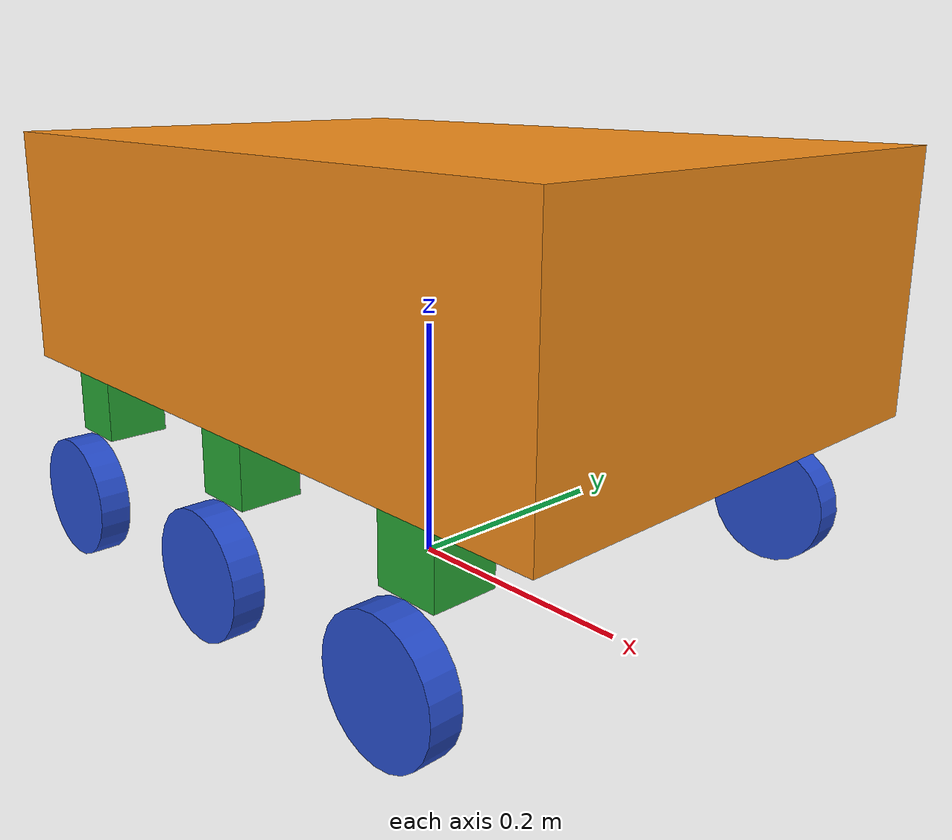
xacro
<?xml version="1.0" ?>
<robot name="my_robot" xmlns:xacro="http://www.ros.org/wiki/xacro">
    <link name="link_base">
        <pose>0 0 0.25 0 0 0</pose>
        <inertial>
            <mass value="20"/>
            <origin xyz="0 0 0.25" rpy="0 0 0"/>
        <inertia ixx="0.1" ixy="0" ixz="0" iyy="0.1" iyz="0" izz="0.1"/>
        </inertial>
        <visual name="link_base_visual">
            <geometry>
                <box size="0.6 0.4 0.2"/>
            </geometry>
            <origin xyz="0 0 0.25" rpy="0 0 0"/>
        </visual>
        <collision name="link_base_collision">
            <geometry>
                <box size="0.6 0.4 0.2"/>
            </geometry>
            <origin xyz="0 0 0.25" rpy="0 0 0"/>
        </collision>
    </link>
    <link name="link_wheel_holder_1">
        <pose>0 0 -0.025 0 0 0</pose>
        <inertial>
            <mass value="1"/>
            <origin xyz="0 0 -0.025" rpy="0 0 0"/>
        <inertia ixx="0.1" ixy="0" ixz="0" iyy="0.1" iyz="0" izz="0.1"/>
        </inertial>
        <visual name="link_wheel_holder_1_visual">
            <geometry>
                <box size="0.05 0.05 0.05"/>
            </geometry>
            <origin xyz="0 0 -0.025" rpy="0 0 0"/>
        </visual>
        <collision name="llink_wheel_holder_1_collision">
            <geometry>
                <box size="0.05 0.05 0.05"/>
            </geometry>
            <origin xyz="0 0 -0.025" rpy="0 0 0"/>
        </collision>
    </link>
    <joint name="joint_link_link_base_wheel_holder_1" type="fixed">
        <origin rpy="0 0 0" xyz="0 0.175 0.15"/>
        <child link="link_wheel_holder_1"/>
        <parent link="link_base"/>
    </joint>
    <link name="link_wheel_holder_2">
        <pose>0 -0.025 -0.025 0 0 0</pose>
        <inertial>
            <mass value="1"/>
            <origin xyz="0 0 -0.025" rpy="0 0 0"/>
        <inertia ixx="0.1" ixy="0" ixz="0" iyy="0.1" iyz="0" izz="0.1"/>
        </inertial>
        <visual name="link_wheel_holder_2_visual">
            <geometry>
                <box size="0.05 0.05 0.05"/>
            </geometry>
            <origin xyz="0 0 -0.025" rpy="0 0 0"/>
        </visual>
        <collision name="llink_wheel_holder_2_collision">
            <geometry>
                <box size="0.05 0.05 0.05"/>
            </geometry>
            <origin xyz="0 0 -0.025" rpy="0 0 0"/>
        </collision>
    </link>
    <joint name="joint_link_link_base_wheel_holder_2" type="fixed">
        <origin rpy="0 0 0" xyz="0 -0.175 0.15"/>
        <child link="link_wheel_holder_2"/>
        <parent link="link_base"/>
    </joint>
    <link name="link_wheel_holder_3">
        <pose>0 0 -0.025 0 0 0</pose>
        <inertial>
            <mass value="1"/>
            <origin xyz="0 0 -0.025" rpy="0 0 0"/>
        <inertia ixx="0.1" ixy="0" ixz="0" iyy="0.1" iyz="0" izz="0.1"/>
        </inertial>
        <visual name="link_wheel_holder_3_visual">
            <geometry>
                <box size="0.05 0.05 0.05"/>
            </geometry>
            <origin xyz="0 0 -0.025" rpy="0 0 0"/>
        </visual>
        <collision name="llink_wheel_holder_3_collision">
            <geometry>
                <box size="0.05 0.05 0.05"/>
            </geometry>
            <origin xyz="0 0 -0.025" rpy="0 0 0"/>
        </collision>
    </link>
    <joint name="joint_link_link_base_wheel_holder_3" type="revolute">
        <origin rpy="0 0 0" xyz="0.2 0.175 0.15"/>
        <axis rpy="0 0 0" xyz="0 0 1"/>
        <limit lower="-3.14" upper="3.14" effort="10" velocity="1.0"/>
        <dynamics damping="10.0" friction="0.5"/>
        <child link="link_wheel_holder_3"/>
        <parent link="link_base"/>
    </joint>
    <link name="link_wheel_holder_4">
        <pose>0 -0.025 -0.025 0 0 0</pose>
        <inertial>
            <mass value="1"/>
            <origin xyz="0 0 -0.025" rpy="0 0 0"/>
        <inertia ixx="0.1" ixy="0" ixz="0" iyy="0.1" iyz="0" izz="0.1"/>
        </inertial>
        <visual name="link_wheel_holder_4_visual">
            <geometry>
                <box size="0.05 0.05 0.05"/>
            </geometry>
            <origin xyz="0 0 -0.025" rpy="0 0 0"/>
        </visual>
        <collision name="llink_wheel_holder_4_collision">
            <geometry>
                <box size="0.05 0.05 0.05"/>
            </geometry>
            <origin xyz="0 0 -0.025" rpy="0 0 0"/>
        </collision>
    </link>
    <joint name="joint_link_link_base_wheel_holder_4" type="revolute">
        <origin rpy="0 0 0" xyz="0.2 -0.175 0.15"/>
        <axis rpy="0 0 0" xyz="0 0 1"/>
        <limit lower="-3.14" upper="3.14" effort="10" velocity="1.0"/>
        <dynamics damping="10.0" friction="0.5"/>
        <child link="link_wheel_holder_4"/>
        <parent link="link_base"/>
    </joint>
    <link name="link_wheel_holder_5">
        <pose>0 0 -0.025 0 0 0</pose>
        <inertial>
            <mass value="1"/>
            <origin xyz="0 0 -0.025" rpy="0 0 0"/>
        <inertia ixx="0.1" ixy="0" ixz="0" iyy="0.1" iyz="0" izz="0.1"/>
        </inertial>
        <visual name="link_wheel_holder_5_visual">
            <geometry>
                <box size="0.05 0.05 0.05"/>
            </geometry>
            <origin xyz="0 0 -0.025" rpy="0 0 0"/>
        </visual>
        <collision name="llink_wheel_holder_5_collision">
            <geometry>
                <box size="0.05 0.05 0.05"/>
            </geometry>
            <origin xyz="0 0 -0.025" rpy="0 0 0"/>
        </collision>
    </link>
    <joint name="joint_link_link_base_wheel_holder_5" type="revolute">
        <origin rpy="0 0 0" xyz="-0.2 0.175 0.15"/>
        <axis rpy="0 0 0" xyz="0 0 1"/>
        <limit lower="-3.14" upper="3.14" effort="10" velocity="1.0"/>
        <dynamics damping="10.0" friction="0.5"/>
        <child link="link_wheel_holder_5"/>
        <parent link="link_base"/>
    </joint>
    <link name="link_wheel_holder_6">
        <pose>0 -0.025 -0.025 0 0 0</pose>
        <inertial>
            <mass value="1"/>
            <origin xyz="0 0 -0.025" rpy="0 0 0"/>
        <inertia ixx="0.1" ixy="0" ixz="0" iyy="0.1" iyz="0" izz="0.1"/>
        </inertial>
        <visual name="link_wheel_holder_6_visual">
            <geometry>
                <box size="0.05 0.05 0.05"/>
            </geometry>
            <origin xyz="0 0 -0.025" rpy="0 0 0"/>
        </visual>
        <collision name="llink_wheel_holder_6_collision">
            <geometry>
                <box size="0.05 0.05 0.05"/>
            </geometry>
            <origin xyz="0 0 -0.025" rpy="0 0 0"/>
        </collision>
    </link>
    <joint name="joint_link_link_base_wheel_holder_6" type="revolute">
        <origin rpy="0 0 0" xyz="-0.2 -0.175 0.15"/>
        <axis rpy="0 0 0" xyz="0 0 1"/>
        <limit lower="-3.14" upper="3.14" effort="10" velocity="1.0"/>
        <dynamics damping="10.0" friction="0.5"/>
        <child link="link_wheel_holder_6"/>
        <parent link="link_base"/>
    </joint>
    <link name="link_wheel_1">
        <pose>0 0.0125 0 1.57 0 0</pose>
        <inertial>
            <mass value="1"/>
            <origin xyz="0 0.0125 0" rpy="1.57 0 0"/>
        <inertia ixx="0.1" ixy="0" ixz="0" iyy="0.1" iyz="0" izz="0.1"/>
        </inertial>
        <visual name="link_wheel_1_visual">
            <geometry>
                <cylinder length="0.025" radius="0.05"/>
            </geometry>
            <origin xyz="0 0.0125 0" rpy="1.57 0 0"/>
        </visual>
        <collision name="link_wheel_1_collision">
            <geometry>
                <cylinder length="0.025" radius="0.05"/>
            </geometry>
            <origin xyz="0 0.0125 0" rpy="1.57 0 0"/>
        </collision>
    </link>
    <joint name="joint_link_wheel_holder_1_link_wheel_1" type="continuous">
        <origin rpy="0 0 0" xyz="0 0.025 -0.1"/>
        <axis rpy="0 0 0" xyz="0 -1 0"/>
        <limit effort="10000" velocity="1000"/>
        <joint_properties damping="1.0" friction="1.0"/>
        <child link="link_wheel_1"/>
        <parent link="link_wheel_holder_1"/>
    </joint>
    <link name="link_wheel_2">
        <pose>0 -0.0125 0 1.57 0 0</pose>
        <inertial>
            <mass value="1"/>
            <origin xyz="0 -0.0125 0" rpy="1.57 0 0"/>
        <inertia ixx="0.1" ixy="0" ixz="0" iyy="0.1" iyz="0" izz="0.1"/>
        </inertial>
        <visual name="link_wheel_2_visual">
            <geometry>
                <cylinder length="0.025" radius="0.05"/>
            </geometry>
            <origin xyz="0 -0.0125 0" rpy="1.57 0 0"/>
        </visual>
        <collision name="link_wheel_2_collision">
            <geometry>
                <cylinder length="0.025" radius="0.05"/>
            </geometry>
            <origin xyz="0 -0.0125 0" rpy="1.57 0 0"/>
        </collision>
    </link>
    <joint name="joint_link_wheel_holder_2_link_wheel_2" type="continuous">
        <origin rpy="0 0 0" xyz="0 -0.025 -0.1"/>
        <axis rpy="0 0 0" xyz="0 -1 0"/>
        <limit effort="10000" velocity="1000"/>
        <joint_properties damping="1.0" friction="1.0"/>
        <child link="link_wheel_2"/>
        <parent link="link_wheel_holder_2"/>
    </joint>
    <link name="link_wheel_3">
        <pose>0 0.0125 0 1.57 0 0</pose>
        <inertial>
            <mass value="1"/>
            <origin xyz="0 0.0125 0" rpy="1.57 0 0"/>
        <inertia ixx="0.1" ixy="0" ixz="0" iyy="0.1" iyz="0" izz="0.1"/>
        </inertial>
        <visual name="link_wheel_3_visual">
            <geometry>
                <cylinder length="0.025" radius="0.05"/>
            </geometry>
            <origin xyz="0 0.0125 0" rpy="1.57 0 0"/>
        </visual>
        <collision name="link_wheel_3_collision">
            <geometry>
                <cylinder length="0.025" radius="0.05"/>
            </geometry>
            <origin xyz="0 0.0125 0" rpy="1.57 0 0"/>
        </collision>
    </link>
    <joint name="joint_link_wheel_holder_3_link_wheel_3" type="continuous">
        <origin rpy="0 0 0" xyz="0 0.025 -0.1"/>
        <axis rpy="0 0 0" xyz="0 -1 0"/>
        <limit effort="10000" velocity="1000"/>
        <joint_properties damping="1.0" friction="1.0"/>
        <child link="link_wheel_3"/>
        <parent link="link_wheel_holder_3"/>
    </joint>
    <link name="link_wheel_4">
        <pose>0 -0.0125 0 1.57 0 0</pose>
        <inertial>
            <mass value="1"/>
            <origin xyz="0 -0.0125 0" rpy="1.57 0 0"/>
        <inertia ixx="0.1" ixy="0" ixz="0" iyy="0.1" iyz="0" izz="0.1"/>
        </inertial>
        <visual name="link_wheel_4_visual">
            <geometry>
                <cylinder length="0.025" radius="0.05"/>
            </geometry>
            <origin xyz="0 -0.0125 0" rpy="1.57 0 0"/>
        </visual>
        <collision name="link_wheel_4_collision">
            <geometry>
                <cylinder length="0.025" radius="0.05"/>
            </geometry>
            <origin xyz="0 -0.0125 0" rpy="1.57 0 0"/>
        </collision>
    </link>
    <joint name="joint_link_wheel_holder_4_link_wheel_4" type="continuous">
        <origin rpy="0 0 0" xyz="0 -0.025 -0.1"/>
        <axis rpy="0 0 0" xyz="0 -1 0"/>
        <limit effort="10000" velocity="1000"/>
        <joint_properties damping="1.0" friction="1.0"/>
        <child link="link_wheel_4"/>
        <parent link="link_wheel_holder_4"/>
    </joint>
    <link name="link_wheel_5">
        <pose>0 0.0125 0 1.57 0 0</pose>
        <inertial>
            <mass value="1"/>
            <origin xyz="0 0.0125 0" rpy="1.57 0 0"/>
        <inertia ixx="0.1" ixy="0" ixz="0" iyy="0.1" iyz="0" izz="0.1"/>
        </inertial>
        <visual name="link_wheel_5_visual">
            <geometry>
                <cylinder length="0.025" radius="0.05"/>
            </geometry>
            <origin xyz="0 0.0125 0" rpy="1.57 0 0"/>
        </visual>
        <collision name="link_wheel_5_collision">
            <geometry>
                <cylinder length="0.025" radius="0.05"/>
            </geometry>
            <origin xyz="0 0.0125 0" rpy="1.57 0 0"/>
        </collision>
    </link>
    <joint name="joint_link_wheel_holder_5_link_wheel_5" type="continuous">
        <origin rpy="0 0 0" xyz="0 0.025 -0.1"/>
        <axis rpy="0 0 0" xyz="0 -1 0"/>
        <limit effort="10000" velocity="1000"/>
        <joint_properties damping="1.0" friction="1.0"/>
        <child link="link_wheel_5"/>
        <parent link="link_wheel_holder_5"/>
    </joint>
    <link name="link_wheel_6">
        <pose>0 -0.0125 0 1.57 0 0</pose>
        <inertial>
            <mass value="1"/>
            <origin xyz="0 -0.0125 0" rpy="1.57 0 0"/>
        <inertia ixx="0.1" ixy="0" ixz="0" iyy="0.1" iyz="0" izz="0.1"/>
        </inertial>
        <visual name="link_wheel_6_visual">
            <geometry>
                <cylinder length="0.025" radius="0.05"/>
            </geometry>
            <origin xyz="0 -0.0125 0" rpy="1.57 0 0"/>
        </visual>
        <collision name="link_wheel_6_collision">
            <geometry>
                <cylinder length="0.025" radius="0.05"/>
            </geometry>
            <origin xyz="0 -0.0125 0" rpy="1.57 0 0"/>
        </collision>
    </link>
    <joint name="joint_link_wheel_holder_6_link_wheel_6" type="continuous">
        <origin rpy="0 0 0" xyz="0 -0.025 -0.1"/>
        <axis rpy="0 0 0" xyz="0 -1 0"/>
        <limit effort="10000" velocity="1000"/>
        <joint_properties damping="1.0" friction="1.0"/>
        <child link="link_wheel_6"/>
        <parent link="link_wheel_holder_6"/>
    </joint>
    <!-- Plugins -->
    <gazebo>
        <plugin name="ackermann_drive" filename="libackerman_drive_plugin.so">
            <updateRate>20</updateRate>
            <commandTopic>cmd_vel</commandTopic>
            <odometryTopic>odom</odometryTopic>
            <odometryFrame>odom</odometryFrame>
            <robotBaseFrame>link_chassis</robotBaseFrame>
            <sixWheel>true</sixWheel>
            <wheelRadius>0.05</wheelRadius>
            <wheelSeperation>0.4</wheelSeperation>
            <wheelBase>0.4</wheelBase>
            <front_left_wheel_joint>joint_link_wheel_holder_6_link_wheel_6</front_left_wheel_joint>
            <front_right_wheel_joint>joint_link_wheel_holder_5_link_wheel_5</front_right_wheel_joint>
            <middle_left_wheel_joint>joint_link_wheel_holder_2_link_wheel_2</middle_left_wheel_joint>
            <middle_right_wheel_joint>joint_link_wheel_holder_1_link_wheel_1</middle_right_wheel_joint>
            <back_left_wheel_joint>joint_link_wheel_holder_4_link_wheel_4</back_left_wheel_joint>
            <back_right_wheel_joint>joint_link_wheel_holder_3_link_wheel_3</back_right_wheel_joint>
            <front_left_stepper_joint>joint_link_link_base_wheel_holder_6</front_left_stepper_joint>
            <front_right_stepper_joint>joint_link_link_base_wheel_holder_5</front_right_stepper_joint>
            <back_left_stepper_joint>joint_link_link_base_wheel_holder_4</back_left_stepper_joint>
            <back_right_stepper_joint>joint_link_link_base_wheel_holder_3</back_right_stepper_joint>
        </plugin>
    </gazebo>
    <!-- Colors -->
    <gazebo reference="link_base">
        <material>Gazebo/Orange</material>
    </gazebo>
    <gazebo reference="link_wheel_1">
        <material>Gazebo/Blue</material>
    </gazebo>
    <gazebo reference="link_wheel_2">
        <material>Gazebo/Blue</material>
    </gazebo>
    <gazebo reference="link_wheel_3">
        <material>Gazebo/Blue</material>
    </gazebo>
    <gazebo reference="link_wheel_4">
        <material>Gazebo/Blue</material>
    </gazebo>
    <gazebo reference="link_wheel_5">
        <material>Gazebo/Blue</material>
    </gazebo>
    <gazebo reference="link_wheel_6">
        <material>Gazebo/Blue</material>
    </gazebo>
    <gazebo reference="link_wheel_holder_1">
        <material>Gazebo/Green</material>
    </gazebo>
    <gazebo reference="link_wheel_holder_2">
        <material>Gazebo/Green</material>
    </gazebo>
    <gazebo reference="link_wheel_holder_3">
        <material>Gazebo/Green</material>
    </gazebo>
    <gazebo reference="link_wheel_holder_4">
        <material>Gazebo/Green</material>
    </gazebo>
    <gazebo reference="link_wheel_holder_5">
        <material>Gazebo/Green</material>
    </gazebo>
    <gazebo reference="link_wheel_holder_6">
        <material>Gazebo/Green</material>
    </gazebo>
</robot>
